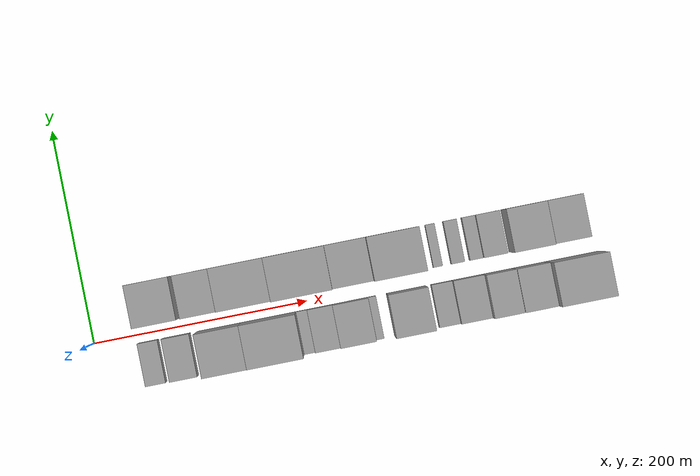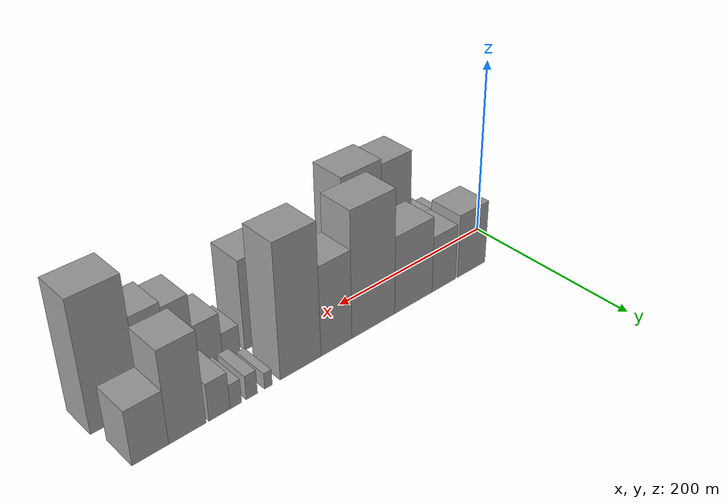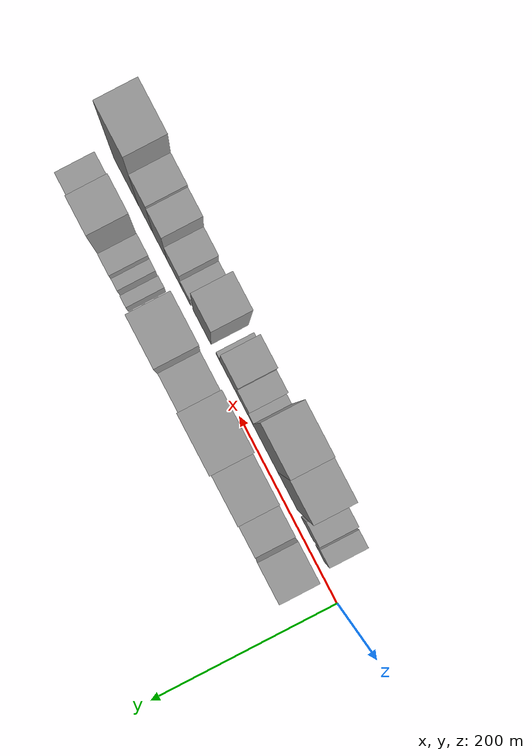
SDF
<sdf version="1.6">
 <world name="default">
  <scene>
   <sky><clouds><speed>12</speed></clouds></sky>
   <ambient>0.4 0.4 0.4 1</ambient>
   <background>0.7 0.7 0.7 1</background>
   <shadows>1</shadows>
  </scene>
  <gravity>0 0 -9.8066</gravity>
  <magnetic_field>6e-06 2.3e-05 -4.2e-05</magnetic_field>
  <physics default="0" name="default_physics" type="ode">
   <ode>
    <solver>
     <type>quick</type>
     <iters>10</iters>
     <sor>1.0</sor>
     <use_dynamic_moi_rescaling>0</use_dynamic_moi_rescaling>
    </solver>
    <constraints>
     <cfm>0</cfm>
     <erp>0.2</erp>
     <contact_max_correcting_vel>100</contact_max_correcting_vel>
     <contact_surface_layer>0.001</contact_surface_layer>
    </constraints>
   </ode>
   <max_step_size>0.004</max_step_size>
   <real_time_factor>1</real_time_factor>
   <real_time_update_rate>250</real_time_update_rate>
  </physics>
  <light name="sun" type="directional">
   <pose>0 0 10 0 0 0</pose>
   <diffuse>0.8 0.8 0.8 1</diffuse>
   <specular>0.2 0.2 0.2 1</specular>
   <attenuation>
    <range>1000</range>
    <constant>0.9</constant>
    <linear>0.01</linear>
    <quadratic>0.001</quadratic>
   </attenuation>
   <direction>-0.5 0.1 -0.9</direction>
  </light>
  <model name="building_1">
   <static>1</static>
   <pose>60.5885 27.5000 0 0.000000 0.000000 1.570796</pose>
   <link name="link">
    <pose>0 0 37.50 0 0 0</pose>
    <collision name="collision"><geometry><box><size>40.0000 41.1770 75.0000</size></box></geometry></collision>
    <visual name="visual">
     <cast_shadows>0</cast_shadows>
     <geometry><box><size>40.0000 41.1770 75.0000</size></box></geometry>
     <material>
      <script>
       <uri>model://grey_wall/materials/scripts</uri>
       <uri>model://grey_wall/materials/textures</uri>
       <name>vrc/grey_wall</name>
      </script>
     </material>
    </visual>
   </link>
  </model>
  <model name="building_2">
   <static>1</static>
   <pose>101.1326 27.5000 0 0.000000 0.000000 1.570796</pose>
   <link name="link">
    <pose>0 0 33.00 0 0 0</pose>
    <collision name="collision"><geometry><box><size>40.0000 33.9111 66.0000</size></box></geometry></collision>
    <visual name="visual">
     <cast_shadows>0</cast_shadows>
     <geometry><box><size>40.0000 33.9111 66.0000</size></box></geometry>
     <material>
      <script>
       <uri>model://grey_wall/materials/scripts</uri>
       <uri>model://grey_wall/materials/textures</uri>
       <name>vrc/grey_wall</name>
      </script>
     </material>
    </visual>
   </link>
  </model>
  <model name="building_3">
   <static>1</static>
   <pose>143.8236 27.5000 0 0.000000 0.000000 1.570796</pose>
   <link name="link">
    <pose>0 0 45.00 0 0 0</pose>
    <collision name="collision"><geometry><box><size>40.0000 51.4710 90.0000</size></box></geometry></collision>
    <visual name="visual">
     <cast_shadows>0</cast_shadows>
     <geometry><box><size>40.0000 51.4710 90.0000</size></box></geometry>
     <material>
      <script>
       <uri>model://grey_wall/materials/scripts</uri>
       <uri>model://grey_wall/materials/textures</uri>
       <name>vrc/grey_wall</name>
      </script>
     </material>
    </visual>
   </link>
  </model>
  <model name="building_4">
   <static>1</static>
   <pose>197.4457 27.5000 0 0.000000 0.000000 1.570796</pose>
   <link name="link">
    <pose>0 0 72.00 0 0 0</pose>
    <collision name="collision"><geometry><box><size>40.0000 55.7732 144.0000</size></box></geometry></collision>
    <visual name="visual">
     <cast_shadows>0</cast_shadows>
     <geometry><box><size>40.0000 55.7732 144.0000</size></box></geometry>
     <material>
      <script>
       <uri>model://grey_wall/materials/scripts</uri>
       <uri>model://grey_wall/materials/textures</uri>
       <name>vrc/grey_wall</name>
      </script>
     </material>
    </visual>
   </link>
  </model>
  <model name="building_5">
   <static>1</static>
   <pose>244.4316 27.5000 0 0.000000 0.000000 1.570796</pose>
   <link name="link">
    <pose>0 0 51.00 0 0 0</pose>
    <collision name="collision"><geometry><box><size>40.0000 38.1986 102.0000</size></box></geometry></collision>
    <visual name="visual">
     <cast_shadows>0</cast_shadows>
     <geometry><box><size>40.0000 38.1986 102.0000</size></box></geometry>
     <material>
      <script>
       <uri>model://grey_wall/materials/scripts</uri>
       <uri>model://grey_wall/materials/textures</uri>
       <name>vrc/grey_wall</name>
      </script>
     </material>
    </visual>
   </link>
  </model>
  <model name="building_6">
   <static>1</static>
   <pose>287.5371 27.5000 0 0.000000 0.000000 1.570796</pose>
   <link name="link">
    <pose>0 0 75.00 0 0 0</pose>
    <collision name="collision"><geometry><box><size>40.0000 48.0125 150.0000</size></box></geometry></collision>
    <visual name="visual">
     <cast_shadows>0</cast_shadows>
     <geometry><box><size>40.0000 48.0125 150.0000</size></box></geometry>
     <material>
      <script>
       <uri>model://grey_wall/materials/scripts</uri>
       <uri>model://grey_wall/materials/textures</uri>
       <name>vrc/grey_wall</name>
      </script>
     </material>
    </visual>
   </link>
  </model>
  <model name="building_7">
   <static>1</static>
   <pose>324.8735 27.5000 0 0.000000 0.000000 1.570796</pose>
   <link name="link">
    <pose>0 0 9.00 0 0 0</pose>
    <collision name="collision"><geometry><box><size>40.0000 8.6602 18.0000</size></box></geometry></collision>
    <visual name="visual">
     <cast_shadows>0</cast_shadows>
     <geometry><box><size>40.0000 8.6602 18.0000</size></box></geometry>
     <material>
      <script>
       <uri>model://grey_wall/materials/scripts</uri>
       <uri>model://grey_wall/materials/textures</uri>
       <name>vrc/grey_wall</name>
      </script>
     </material>
    </visual>
   </link>
  </model>
  <model name="building_8">
   <static>1</static>
   <pose>343.4143 27.5000 0 0.000000 0.000000 1.570796</pose>
   <link name="link">
    <pose>0 0 13.50 0 0 0</pose>
    <collision name="collision"><geometry><box><size>40.0000 12.4214 27.0000</size></box></geometry></collision>
    <visual name="visual">
     <cast_shadows>0</cast_shadows>
     <geometry><box><size>40.0000 12.4214 27.0000</size></box></geometry>
     <material>
      <script>
       <uri>model://grey_wall/materials/scripts</uri>
       <uri>model://grey_wall/materials/textures</uri>
       <name>vrc/grey_wall</name>
      </script>
     </material>
    </visual>
   </link>
  </model>
  <model name="building_9">
   <static>1</static>
   <pose>360.8546 27.5000 0 0.000000 0.000000 1.570796</pose>
   <link name="link">
    <pose>0 0 13.50 0 0 0</pose>
    <collision name="collision"><geometry><box><size>40.0000 12.4592 27.0000</size></box></geometry></collision>
    <visual name="visual">
     <cast_shadows>0</cast_shadows>
     <geometry><box><size>40.0000 12.4592 27.0000</size></box></geometry>
     <material>
      <script>
       <uri>model://grey_wall/materials/scripts</uri>
       <uri>model://grey_wall/materials/textures</uri>
       <name>vrc/grey_wall</name>
      </script>
     </material>
    </visual>
   </link>
  </model>
  <model name="building_10">
   <static>1</static>
   <pose>378.2840 27.5000 0 0.000000 0.000000 1.570796</pose>
   <link name="link">
    <pose>0 0 21.00 0 0 0</pose>
    <collision name="collision"><geometry><box><size>40.0000 22.3996 42.0000</size></box></geometry></collision>
    <visual name="visual">
     <cast_shadows>0</cast_shadows>
     <geometry><box><size>40.0000 22.3996 42.0000</size></box></geometry>
     <material>
      <script>
       <uri>model://grey_wall/materials/scripts</uri>
       <uri>model://grey_wall/materials/textures</uri>
       <name>vrc/grey_wall</name>
      </script>
     </material>
    </visual>
   </link>
  </model>
  <model name="building_11">
   <static>1</static>
   <pose>411.4065 27.5000 0 0.000000 0.000000 1.570796</pose>
   <link name="link">
    <pose>0 0 51.00 0 0 0</pose>
    <collision name="collision"><geometry><box><size>40.0000 37.8453 102.0000</size></box></geometry></collision>
    <visual name="visual">
     <cast_shadows>0</cast_shadows>
     <geometry><box><size>40.0000 37.8453 102.0000</size></box></geometry>
     <material>
      <script>
       <uri>model://grey_wall/materials/scripts</uri>
       <uri>model://grey_wall/materials/textures</uri>
       <name>vrc/grey_wall</name>
      </script>
     </material>
    </visual>
   </link>
  </model>
  <model name="building_12">
   <static>1</static>
   <pose>448.2519 27.5000 0 0.000000 0.000000 1.570796</pose>
   <link name="link">
    <pose>0 0 30.00 0 0 0</pose>
    <collision name="collision"><geometry><box><size>40.0000 35.8455 60.0000</size></box></geometry></collision>
    <visual name="visual">
     <cast_shadows>0</cast_shadows>
     <geometry><box><size>40.0000 35.8455 60.0000</size></box></geometry>
     <material>
      <script>
       <uri>model://grey_wall/materials/scripts</uri>
       <uri>model://grey_wall/materials/textures</uri>
       <name>vrc/grey_wall</name>
      </script>
     </material>
    </visual>
   </link>
  </model>
  <model name="building_13">
   <static>1</static>
   <pose>49.4781 -27.5000 0 0.000000 0.000000 1.570796</pose>
   <link name="link">
    <pose>0 0 18.00 0 0 0</pose>
    <collision name="collision"><geometry><box><size>40.0000 18.9563 36.0000</size></box></geometry></collision>
    <visual name="visual">
     <cast_shadows>0</cast_shadows>
     <geometry><box><size>40.0000 18.9563 36.0000</size></box></geometry>
     <material>
      <script>
       <uri>model://grey_wall/materials/scripts</uri>
       <uri>model://grey_wall/materials/textures</uri>
       <name>vrc/grey_wall</name>
      </script>
     </material>
    </visual>
   </link>
  </model>
  <model name="building_14">
   <static>1</static>
   <pose>75.8947 -27.5000 0 0.000000 0.000000 1.570796</pose>
   <link name="link">
    <pose>0 0 24.00 0 0 0</pose>
    <collision name="collision"><geometry><box><size>40.0000 25.8768 48.0000</size></box></geometry></collision>
    <visual name="visual">
     <cast_shadows>0</cast_shadows>
     <geometry><box><size>40.0000 25.8768 48.0000</size></box></geometry>
     <material>
      <script>
       <uri>model://grey_wall/materials/scripts</uri>
       <uri>model://grey_wall/materials/textures</uri>
       <name>vrc/grey_wall</name>
      </script>
     </material>
    </visual>
   </link>
  </model>
  <model name="building_15">
   <static>1</static>
   <pose>116.3176 -27.5000 0 0.000000 0.000000 1.570796</pose>
   <link name="link">
    <pose>0 0 66.00 0 0 0</pose>
    <collision name="collision"><geometry><box><size>40.0000 40.9692 132.0000</size></box></geometry></collision>
    <visual name="visual">
     <cast_shadows>0</cast_shadows>
     <geometry><box><size>40.0000 40.9692 132.0000</size></box></geometry>
     <material>
      <script>
       <uri>model://grey_wall/materials/scripts</uri>
       <uri>model://grey_wall/materials/textures</uri>
       <name>vrc/grey_wall</name>
      </script>
     </material>
    </visual>
   </link>
  </model>
  <model name="building_16">
   <static>1</static>
   <pose>162.5385 -27.5000 0 0.000000 0.000000 1.570796</pose>
   <link name="link">
    <pose>0 0 69.00 0 0 0</pose>
    <collision name="collision"><geometry><box><size>40.0000 51.4725 138.0000</size></box></geometry></collision>
    <visual name="visual">
     <cast_shadows>0</cast_shadows>
     <geometry><box><size>40.0000 51.4725 138.0000</size></box></geometry>
     <material>
      <script>
       <uri>model://grey_wall/materials/scripts</uri>
       <uri>model://grey_wall/materials/textures</uri>
       <name>vrc/grey_wall</name>
      </script>
     </material>
    </visual>
   </link>
  </model>
  <model name="building_17">
   <static>1</static>
   <pose>193.4949 -27.5000 0 0.000000 0.000000 1.570796</pose>
   <link name="link">
    <pose>0 0 10.50 0 0 0</pose>
    <collision name="collision"><geometry><box><size>40.0000 10.4404 21.0000</size></box></geometry></collision>
    <visual name="visual">
     <cast_shadows>0</cast_shadows>
     <geometry><box><size>40.0000 10.4404 21.0000</size></box></geometry>
     <material>
      <script>
       <uri>model://grey_wall/materials/scripts</uri>
       <uri>model://grey_wall/materials/textures</uri>
       <name>vrc/grey_wall</name>
      </script>
     </material>
    </visual>
   </link>
  </model>
  <model name="building_18">
   <static>1</static>
   <pose>210.4930 -27.5000 0 0.000000 0.000000 1.570796</pose>
   <link name="link">
    <pose>0 0 21.00 0 0 0</pose>
    <collision name="collision"><geometry><box><size>40.0000 23.5559 42.0000</size></box></geometry></collision>
    <visual name="visual">
     <cast_shadows>0</cast_shadows>
     <geometry><box><size>40.0000 23.5559 42.0000</size></box></geometry>
     <material>
      <script>
       <uri>model://grey_wall/materials/scripts</uri>
       <uri>model://grey_wall/materials/textures</uri>
       <name>vrc/grey_wall</name>
      </script>
     </material>
    </visual>
   </link>
  </model>
  <model name="building_19">
   <static>1</static>
   <pose>238.9981 -27.5000 0 0.000000 0.000000 1.570796</pose>
   <link name="link">
    <pose>0 0 31.50 0 0 0</pose>
    <collision name="collision"><geometry><box><size>40.0000 33.4544 63.0000</size></box></geometry></collision>
    <visual name="visual">
     <cast_shadows>0</cast_shadows>
     <geometry><box><size>40.0000 33.4544 63.0000</size></box></geometry>
     <material>
      <script>
       <uri>model://grey_wall/materials/scripts</uri>
       <uri>model://grey_wall/materials/textures</uri>
       <name>vrc/grey_wall</name>
      </script>
     </material>
    </visual>
   </link>
  </model>
  <model name="building_20">
   <static>1</static>
   <pose>259.5247 -27.5000 0 0.000000 0.000000 1.570796</pose>
   <link name="link">
    <pose>0 0 9.00 0 0 0</pose>
    <collision name="collision"><geometry><box><size>40.0000 7.5987 18.0000</size></box></geometry></collision>
    <visual name="visual">
     <cast_shadows>0</cast_shadows>
     <geometry><box><size>40.0000 7.5987 18.0000</size></box></geometry>
     <material>
      <script>
       <uri>model://grey_wall/materials/scripts</uri>
       <uri>model://grey_wall/materials/textures</uri>
       <name>vrc/grey_wall</name>
      </script>
     </material>
    </visual>
   </link>
  </model>
  <model name="building_21">
   <static>1</static>
   <pose>291.7061 -27.5000 0 0.000000 0.000000 1.570796</pose>
   <link name="link">
    <pose>0 0 51.00 0 0 0</pose>
    <collision name="collision"><geometry><box><size>40.0000 36.7641 102.0000</size></box></geometry></collision>
    <visual name="visual">
     <cast_shadows>0</cast_shadows>
     <geometry><box><size>40.0000 36.7641 102.0000</size></box></geometry>
     <material>
      <script>
       <uri>model://grey_wall/materials/scripts</uri>
       <uri>model://grey_wall/materials/textures</uri>
       <name>vrc/grey_wall</name>
      </script>
     </material>
    </visual>
   </link>
  </model>
  <model name="building_22">
   <static>1</static>
   <pose>324.8968 -27.5000 0 0.000000 0.000000 1.570796</pose>
   <link name="link">
    <pose>0 0 16.50 0 0 0</pose>
    <collision name="collision"><geometry><box><size>40.0000 19.6174 33.0000</size></box></geometry></collision>
    <visual name="visual">
     <cast_shadows>0</cast_shadows>
     <geometry><box><size>40.0000 19.6174 33.0000</size></box></geometry>
     <material>
      <script>
       <uri>model://grey_wall/materials/scripts</uri>
       <uri>model://grey_wall/materials/textures</uri>
       <name>vrc/grey_wall</name>
      </script>
     </material>
    </visual>
   </link>
  </model>
  <model name="building_23">
   <static>1</static>
   <pose>349.2079 -27.5000 0 0.000000 0.000000 1.570796</pose>
   <link name="link">
    <pose>0 0 28.50 0 0 0</pose>
    <collision name="collision"><geometry><box><size>40.0000 29.0049 57.0000</size></box></geometry></collision>
    <visual name="visual">
     <cast_shadows>0</cast_shadows>
     <geometry><box><size>40.0000 29.0049 57.0000</size></box></geometry>
     <material>
      <script>
       <uri>model://grey_wall/materials/scripts</uri>
       <uri>model://grey_wall/materials/textures</uri>
       <name>vrc/grey_wall</name>
      </script>
     </material>
    </visual>
   </link>
  </model>
  <model name="building_24">
   <static>1</static>
   <pose>377.6719 -27.5000 0 0.000000 0.000000 1.570796</pose>
   <link name="link">
    <pose>0 0 46.50 0 0 0</pose>
    <collision name="collision"><geometry><box><size>40.0000 27.9230 93.0000</size></box></geometry></collision>
    <visual name="visual">
     <cast_shadows>0</cast_shadows>
     <geometry><box><size>40.0000 27.9230 93.0000</size></box></geometry>
     <material>
      <script>
       <uri>model://grey_wall/materials/scripts</uri>
       <uri>model://grey_wall/materials/textures</uri>
       <name>vrc/grey_wall</name>
      </script>
     </material>
    </visual>
   </link>
  </model>
  <model name="building_25">
   <static>1</static>
   <pose>406.9449 -27.5000 0 0.000000 0.000000 1.570796</pose>
   <link name="link">
    <pose>0 0 49.50 0 0 0</pose>
    <collision name="collision"><geometry><box><size>40.0000 30.6229 99.0000</size></box></geometry></collision>
    <visual name="visual">
     <cast_shadows>0</cast_shadows>
     <geometry><box><size>40.0000 30.6229 99.0000</size></box></geometry>
     <material>
      <script>
       <uri>model://grey_wall/materials/scripts</uri>
       <uri>model://grey_wall/materials/textures</uri>
       <name>vrc/grey_wall</name>
      </script>
     </material>
    </visual>
   </link>
  </model>
  <model name="building_26">
   <static>1</static>
   <pose>447.5137 -27.5000 0 0.000000 0.000000 1.570796</pose>
   <link name="link">
    <pose>0 0 72.00 0 0 0</pose>
    <collision name="collision"><geometry><box><size>40.0000 50.5146 144.0000</size></box></geometry></collision>
    <visual name="visual">
     <cast_shadows>0</cast_shadows>
     <geometry><box><size>40.0000 50.5146 144.0000</size></box></geometry>
     <material>
      <script>
       <uri>model://grey_wall/materials/scripts</uri>
       <uri>model://grey_wall/materials/textures</uri>
       <name>vrc/grey_wall</name>
      </script>
     </material>
    </visual>
   </link>
  </model>
 </world>
</sdf>
